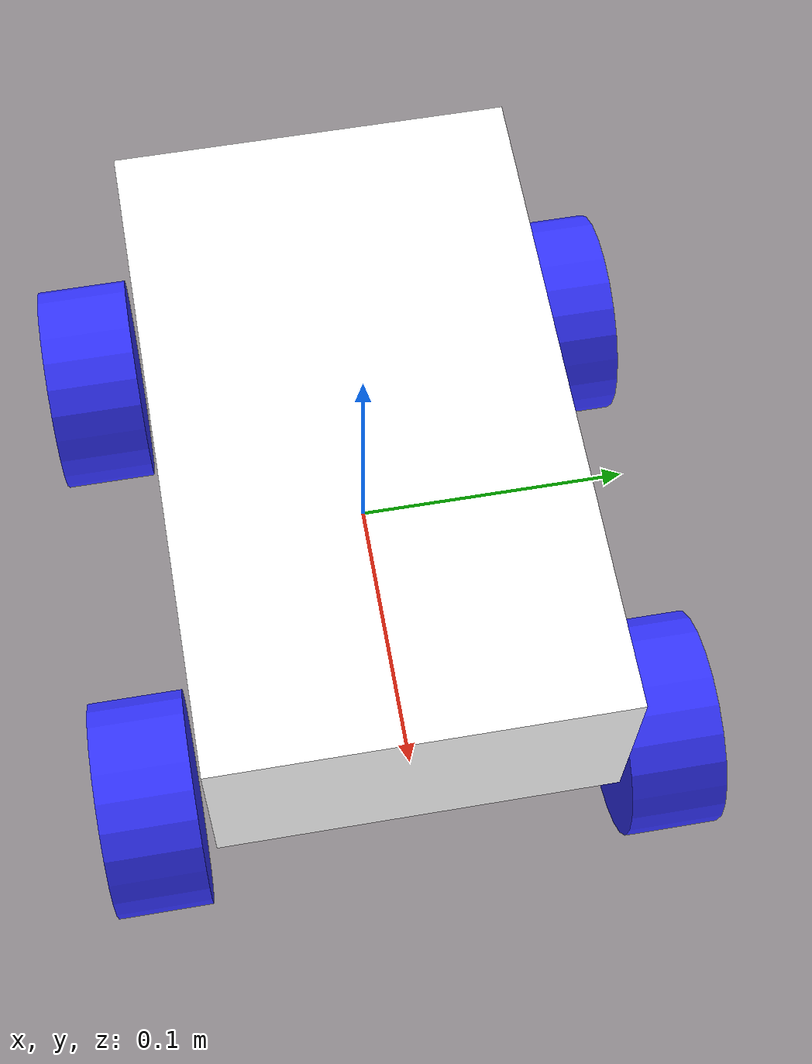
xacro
<?xml version="1.0"?>
<robot xmlns:xacro="http://www.ros.org/wiki/xacro" >

    <xacro:include filename="inertial_macros.xacro"/>

    <material name="white">
        <color rgba="1 1 1 1"/>>
    </material>

    <material name="orange">
        <color rgba="1 0.3 0.1 1"/>>
    </material>

    <material name="blue">
        <color rgba="0.2 0.2 1 1"/>>
    </material>

    <material name="black">
        <color rgba="0 0 0 1"/>>
    </material>

    <!-- BASE LINK-->
    <link name="base_link">

    </link>

    <!-- CHASSIS LINK-->
    <joint name="chassis_joint" type="fixed">
        <parent link="base_link"/>
        <child link="chassis"/>
        <origin xyz="-0.12 0 0"/>
    </joint>

    <link name="chassis">
        <visual>
            <origin xyz="0.12 0 0.039"/>
            <geometry>
                <box size="0.24 0.145 0.078"/>
            </geometry>
            <material name="white"/>
        </visual>
        <collision>
            <origin xyz="0.12 0 0.039"/>
            <geometry>
                <box size="0.24 0.145 0.078"/>
            </geometry>
        </collision>
        <xacro:inertial_box mass="0.5" x="0.24" y="0.145" z="0.078">
            <origin xyz="0.12 0 0.039" rpy="0 0 0"/>
        </xacro:inertial_box>
    </link>

        <!-- LEFT FRONT WHEEL LINK-->
    <joint name="left_front_wheel_joint" type="continuous">
        <parent link="base_link"/>
        <child link="left_front_wheel"/>
        <origin xyz="0.09 0.095 -0.03" rpy="-${pi/2} 0 0"/>
        <axis xyz="0 0 1"/>
    </joint>

    <link name="left_front_wheel">
        <visual>
            <geometry>
                <cylinder radius="0.04" length="0.035"/>
            </geometry>
            <material name="blue"/>
        </visual>
        <collision>
            <geometry>
                <cylinder radius="0.04" length="0.035"/>
            </geometry>
        </collision>
        <xacro:inertial_cylinder mass="0.1" length="0.035" radius="0.04">
            <origin xyz="0 0 0" rpy="0 0 0"/>
        </xacro:inertial_cylinder>
    </link>

    <!-- Right FRONT WHEEL LINK-->
    <joint name="right_front_wheel_joint" type="continuous">
        <parent link="base_link"/>
        <child link="right_front_wheel"/>
        <origin xyz="0.09 -0.095 -0.03" rpy="-${pi/2} 0 0"/>
        <axis xyz="0 0 1"/>
    </joint>

    <link name="right_front_wheel">
        <visual>
            <geometry>
                <cylinder radius="0.04" length="0.035"/>
            </geometry>
            <material name="blue"/>
        </visual>
        <collision>
            <geometry>
                <cylinder radius="0.04" length="0.035"/>
            </geometry>
        </collision>
        <xacro:inertial_cylinder mass="0.1" length="0.035" radius="0.04">
            <origin xyz="0 0 0" rpy="0 0 0"/>
        </xacro:inertial_cylinder>
    </link>

    <!-- LEFT Back WHEEL LINK-->
    <joint name="left_back_wheel_joint" type="continuous">
        <parent link="base_link"/>
        <child link="left_back_wheel"/>
        <origin xyz="-0.09 0.095 -0.03" rpy="-${pi/2} 0 0"/>
        <axis xyz="0 0 1"/>
    </joint>

    <link name="left_back_wheel">
        <visual>
            <geometry>
                <cylinder radius="0.04" length="0.035"/>
            </geometry>
            <material name="blue"/>
        </visual>
        <collision>
            <geometry>
                <cylinder radius="0.04" length="0.035"/>
            </geometry>
        </collision>
        <xacro:inertial_cylinder mass="0.1" length="0.035" radius="0.04">
            <origin xyz="0 0 0" rpy="0 0 0"/>
        </xacro:inertial_cylinder>
    </link>

    <!-- Right Back WHEEL LINK-->
    <joint name="right_back_wheel_joint" type="continuous">
        <parent link="base_link"/>
        <child link="right_back_wheel"/>
        <origin xyz="-0.09 -0.095 -0.03" rpy="-${pi/2} 0 0"/>
        <axis xyz="0 0 1"/>
    </joint>

    <link name="right_back_wheel">
        <visual>
            <geometry>
                <cylinder radius="0.04" length="0.035"/>
            </geometry>
            <material name="blue"/>
        </visual>
        <collision>
            <geometry>
                <cylinder radius="0.04" length="0.035"/>
            </geometry>
        </collision>
        <xacro:inertial_cylinder mass="0.1" length="0.035" radius="0.04">
            <origin xyz="0 0 0" rpy="0 0 0"/>
        </xacro:inertial_cylinder>
    </link>

</robot>
